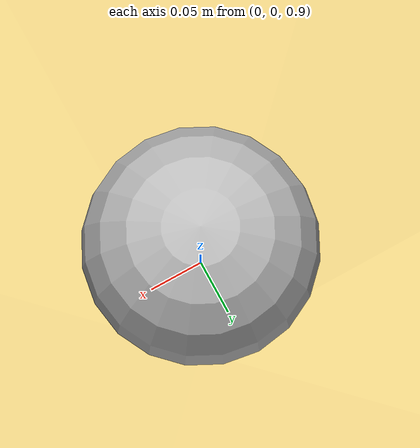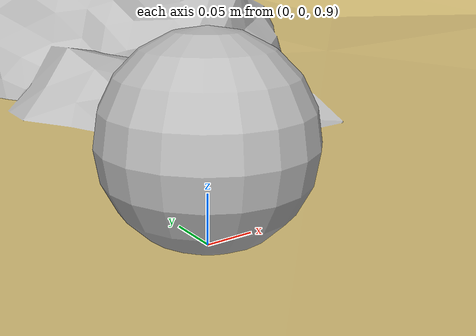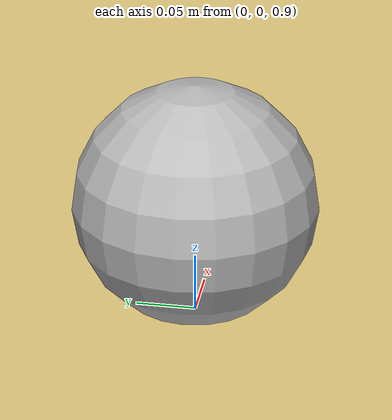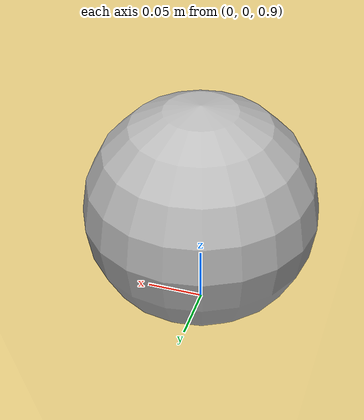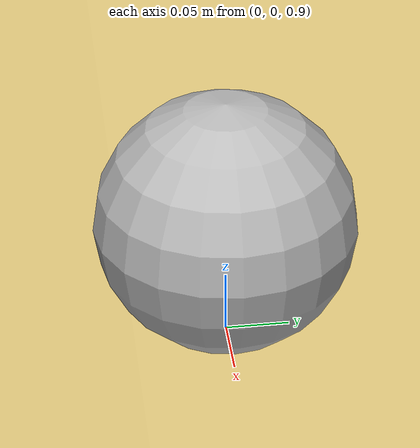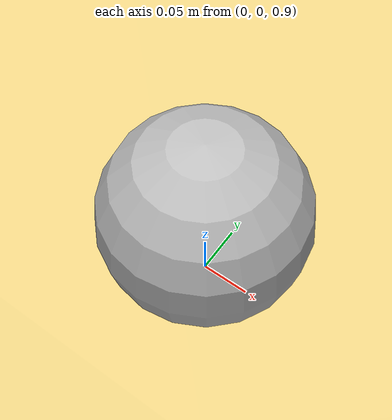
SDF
<?xml version="1.0" ?>
<sdf version="1.6">
    <world name="default">
        <model name="sandy_terrain">
            <static>true</static>
            <link name="sand_surface">
                <collision name="collision">
                    <geometry>
                        <mesh>
                            <uri>file:///home/turtle_on_land/gazebo_worlds/SANDY_TERRAINII.dae</uri>
                        </mesh>
                    </geometry>
                    <surface>
                        <friction>
                            <ode>
                                <mu>0.4</mu>
                                <mu2>0.4</mu2>
                                <slip1>0.2</slip1>
                                <slip2>0.2</slip2>
                            </ode>
                            <torsional>
                                <coefficient>0.02</coefficient> <!-- Rolling friction coefficient -->
                                <use_patch_radius>true</use_patch_radius>
                                <patch_radius>0.05</patch_radius>
                                <surface_radius>0.05</surface_radius>
                                <ode>
                                    <slip>0.01</slip>
                                </ode>
                            </torsional>
                        </friction>
                        <bounce>
                            <restitution_coefficient>0.05</restitution_coefficient>
                            <threshold>100.0</threshold>
                        </bounce>
                        <contact>
                            <ode>
                                <soft_cfm>0.1</soft_cfm>     <!-- Increased compressibility -->
                                <soft_erp>0.1</soft_erp>     <!-- Lower elasticity -->
                                <kp>500.0</kp>               <!-- Lower stiffness -->
                                <kd>5.0</kd>                 <!-- Reduced damping -->
                                <max_vel>0.1</max_vel>
                                <min_depth>0.01</min_depth>
                            </ode>
                        </contact>
                    </surface>
                </collision>
                <visual name="visual">
                    <geometry>
                        <mesh>
                            <uri>file:///home/turtle_on_land/gazebo_worlds/SANDY_TERRAINII.dae</uri>
                        </mesh>
                    </geometry>
                </visual>
            </link>
        </model>

        <!-- Test sphere to interact with the sand terrain -->
        <model name="test_sphere">
            <static>false</static>
            <link name="link">
                <inertial>
                    <mass>1.0</mass>   <!-- Increased mass for greater impact -->
                </inertial>
                <collision name="collision">
                    <geometry>
                        <sphere>
                            <radius>0.1</radius>
                        </sphere>
                    </geometry>
                    <surface>
                        <contact>
                            <ode>
                                <soft_cfm>0.05</soft_cfm>
                                <soft_erp>0.2</soft_erp>
                            </ode>
                        </contact>
                    </surface>
                </collision>
                <visual name="visual">
                    <geometry>
                        <sphere>
                            <radius>0.1</radius>
                        </sphere>
                    </geometry>
                </visual>
                <pose>0 0 1 0 0 0</pose> <!-- Position above sand surface to fall onto it -->
            </link>
        </model>
    </world>
</sdf>
